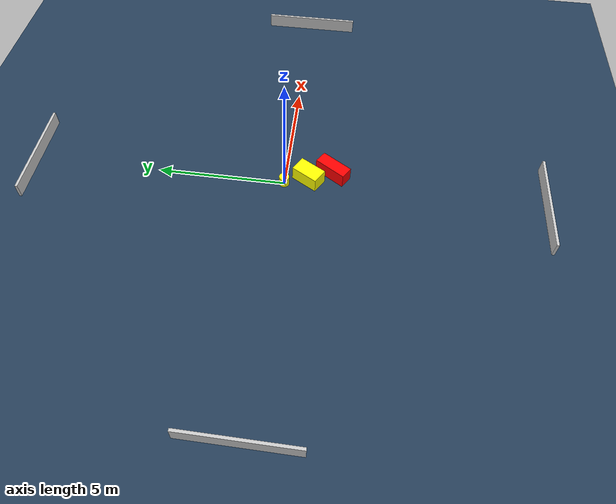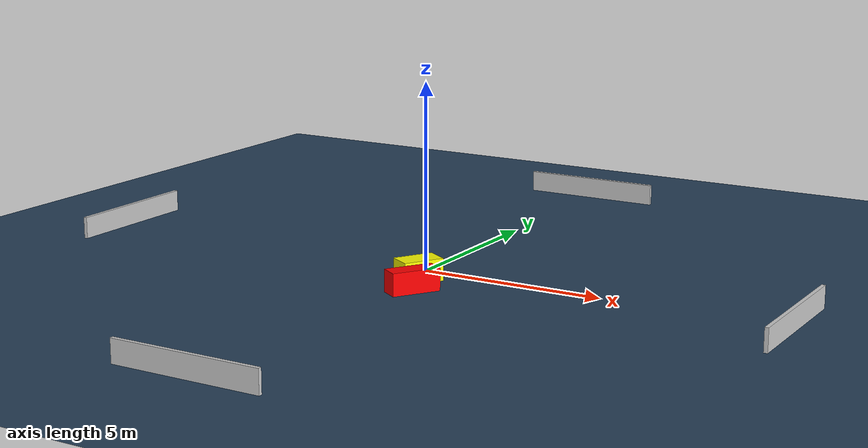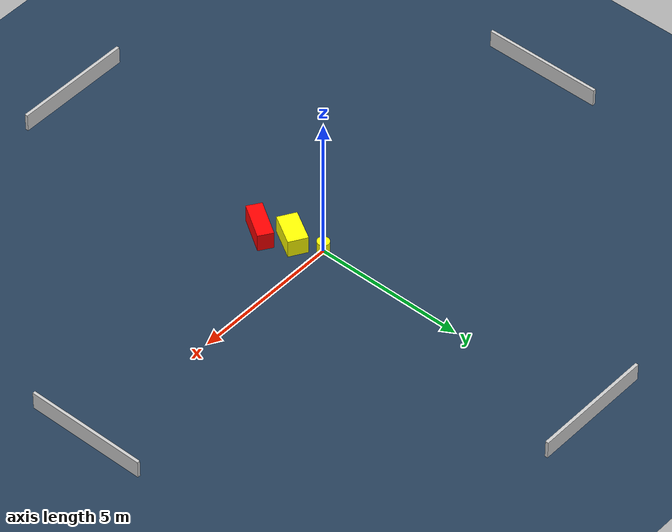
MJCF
<?xml version="1.0" ?>
<mujoco model="generated_environment">
  <option timestep="0.01" integrator="RK4" cone="elliptic"/>
  <default>
    <geom density="1"/>
  </default>
  <asset>
    <texture builtin="gradient" height="3072" name="skybox" rgb1="0.3 0.5 0.7" rgb2="0 0 0" type="skybox" width="512"/>
    <texture builtin="checker" height="300" name="groundplane" rgb1="0.2 0.3 0.4" rgb2="0.1 0.2 0.3" type="2d" width="300"/>
    <material name="groundplane" reflectance="0.2" texrepeat="5 5" texture="groundplane"/>
  </asset>
  <worldbody>
    <light dir="0 0 -1" directional="true" pos="0 0 1.5"/>
    <geom condim="3" friction="0.5 0.005 0.001" material="groundplane" name="floor" pos="0 0 0" size="0 0 0.05" type="plane"/>
    <body name="walls">
      <geom name="wall_1" condim="4" pos="-10.0 0.0 0.3" rgba="0.800000011920929 0.800000011920929 0.800000011920929 1.0" size="0.05 2.0 0.3" type="box"/>
      <geom name="wall_2" condim="4" pos="10.0 0.0 0.3" rgba="0.800000011920929 0.800000011920929 0.800000011920929 1.0" size="0.05 2.0 0.3" type="box"/>
      <geom name="wall_3" condim="4" pos="0.0 -10.0 0.3" rgba="0.800000011920929 0.800000011920929 0.800000011920929 1.0" size="2.0 0.05 0.3" type="box"/>
      <geom name="wall_4" condim="4" pos="0.0 10.0 0.3" rgba="0.800000011920929 0.800000011920929 0.800000011920929 1.0" size="2.0 0.05 0.3" type="box"/>
    </body>
    <body name="robot">
      <joint name="joint_x" type="slide" pos="0 0 0" axis="1 0 0"/>
      <joint name="joint_y" type="slide" pos="0 0 0" axis="0 1 0"/>
      <geom name="robot" type="cylinder" pos="0.0 0.0 0.2" size="0.2 0.2 0.0" mass="5.0" friction="1.0 0.005 0.0001" condim="4" rgba="1.0 1.0 0.0 1.0"/>
    </body>
    <body name="obstacle_1_movable">
      <geom name="obstacle_1_movable" condim="4" pos="0.31348993850254475 -0.9179668389049216 0.3" euler="0 0 239.2521529207974" friction="0.0 0.005 0.001" rgba="1.0 1.0 0.0 1.0" size="0.5509857611866886 0.32121023327457754 0.3" type="box" mass="0.1"/>
      <joint type="free"/>
    </body>
    <body name="obstacle_2_static">
      <geom name="obstacle_2_static" condim="4" pos="0.6965560320064853 -1.8460002432331917 0.3" euler="0 0 147.01228412742597" friction="0.0 0.005 0.001" rgba="1.0 0.0 0.0 1.0" size="0.2556250692542653 0.6520926698941006 0.3" type="box"/>
    </body>
  </worldbody>
  <actuator>
    <motor name="actuator_x" joint="joint_x" gear="1" ctrlrange="-1 1"/>
    <motor name="actuator_y" joint="joint_y" gear="1" ctrlrange="-1 1"/>
  </actuator>
</mujoco>
